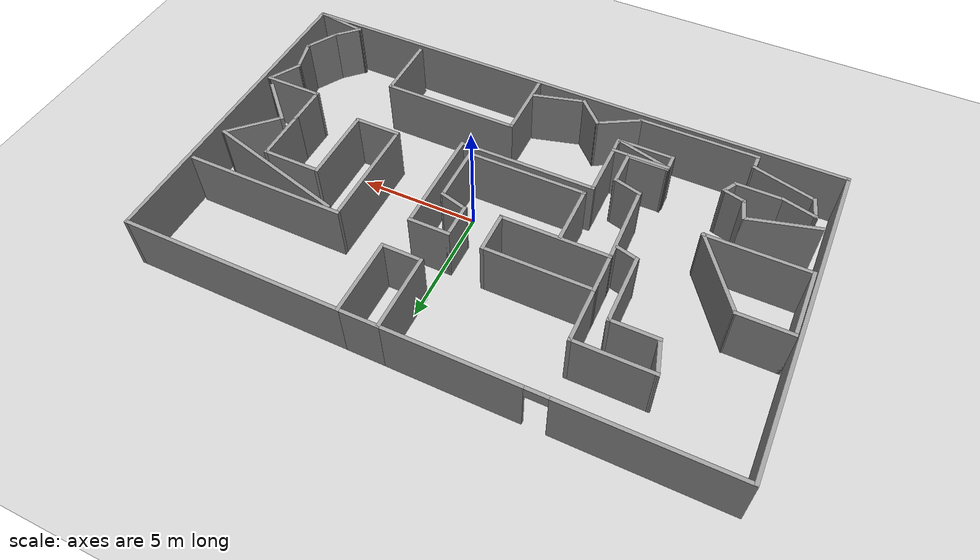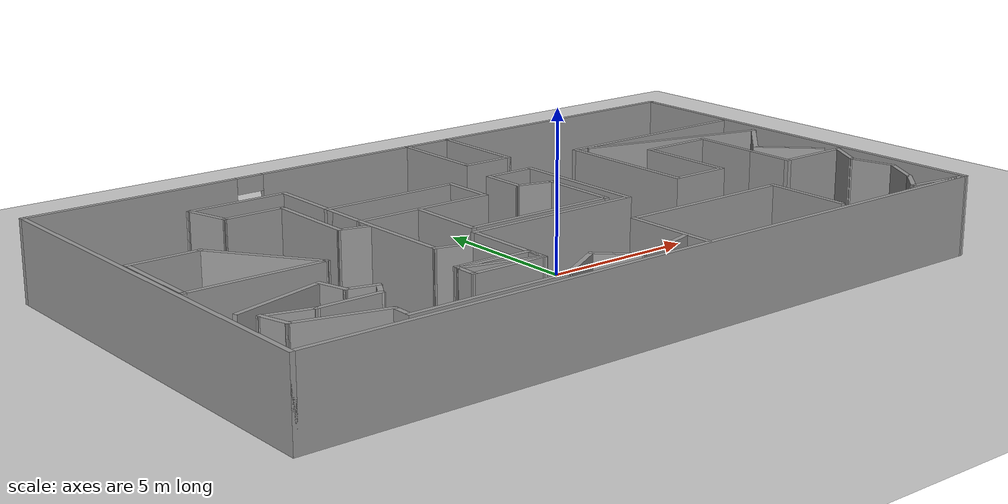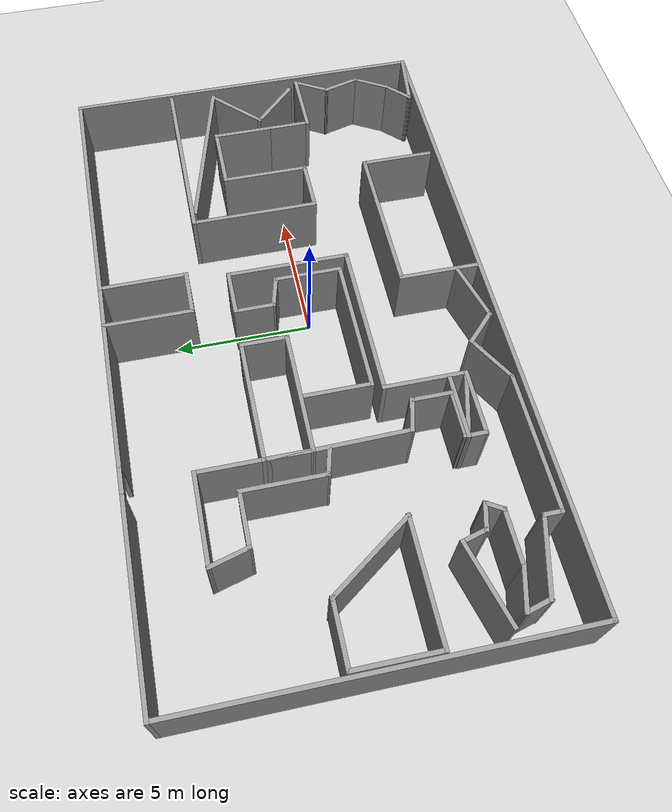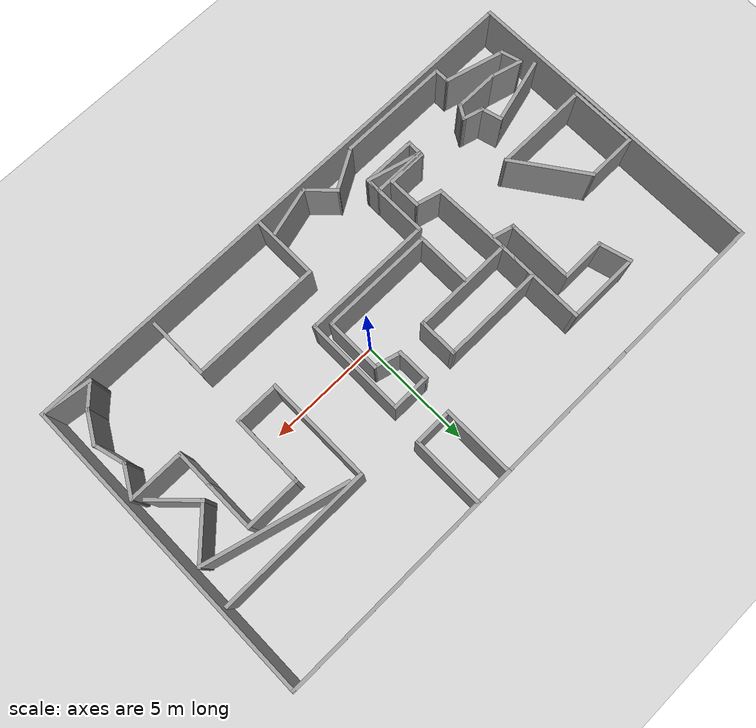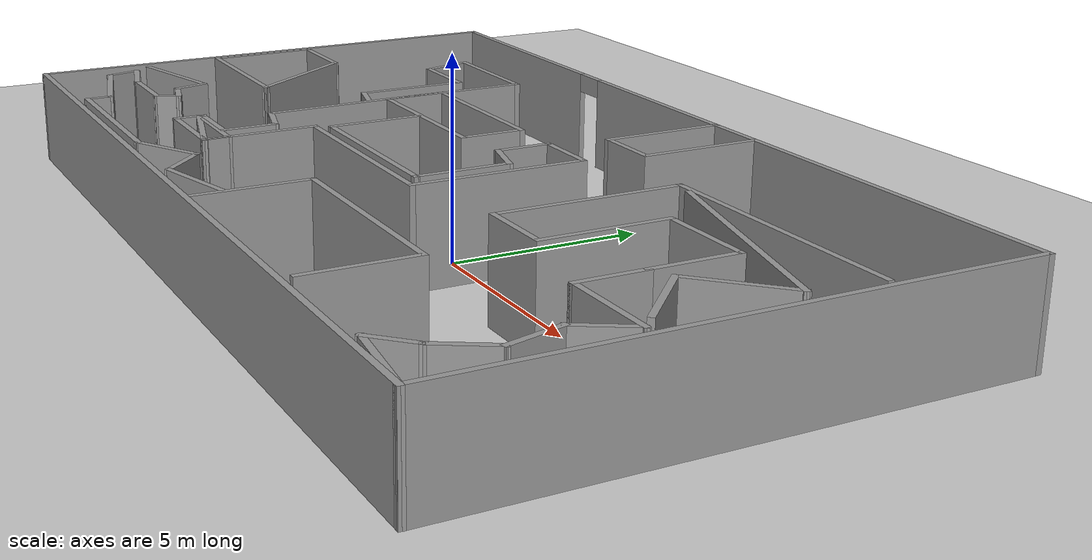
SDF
<sdf version="1.6">
 <world name="default">
  <light name="sun" type="directional">
   <pose>0 0 10 0 -0 0</pose>
   <diffuse>0.8 0.8 0.8 1</diffuse>
   <specular>0.2 0.2 0.2 1</specular>
   <attenuation>
    <range>1000</range>
    <constant>0.9</constant>
    <linear>0.01</linear>
    <quadratic>0.001</quadratic>
   </attenuation>
   <direction>-0.5 0.1 -0.9</direction>
  </light>
  <model name="ground_plane">
   <static>1</static>
   <link name="link">
    <collision name="collision">
     <geometry><plane><normal>0 0 1</normal><size>100 100</size></plane></geometry>
     <surface>
      <contact><collide_bitmask>65535</collide_bitmask></contact>
      <friction><ode><mu>100</mu><mu2>50</mu2></ode></friction>
     </surface>
    </collision>
    <visual name="visual">
     <cast_shadows>0</cast_shadows>
     <geometry><plane><normal>0 0 1</normal><size>100 100</size></plane></geometry>
     <material>
      <script><uri>file://media/materials/scripts/gazebo.material</uri><name>Gazebo/Grey</name></script>
     </material>
    </visual>
   </link>
  </model>
  <gravity>0 0 -9.8</gravity>
  <magnetic_field>6e-06 2.3e-05 -4.2e-05</magnetic_field>
  <atmosphere type="adiabatic"/>
  <physics name="default_physics" default="0" type="ode">
   <max_step_size>0.001</max_step_size>
   <real_time_factor>1</real_time_factor>
   <real_time_update_rate>1000</real_time_update_rate>
  </physics>
  <scene><ambient>0.4 0.4 0.4 1</ambient><background>0.7 0.7 0.7 1</background><shadows>1</shadows></scene>
  <audio><device>default</device></audio>
  <spherical_coordinates>
   <surface_model>EARTH_WGS84</surface_model>
   <latitude_deg>0</latitude_deg>
   <longitude_deg>0</longitude_deg>
   <elevation>0</elevation>
   <heading_deg>0</heading_deg>
  </spherical_coordinates>
  <model name="map1">
   <pose>-1.19039 0.507382 0 0 -0 0</pose>
   <link name="Wall_0">
    <collision name="Wall_0_Collision">
     <geometry><box><size>4.5 0.15 2.5</size></box></geometry>
     <pose>0 0 1.25 0 -0 0</pose>
    </collision>
    <visual name="Wall_0_Visual">
     <pose>0 0 1.25 0 -0 0</pose>
     <geometry><box><size>4.5 0.15 2.5</size></box></geometry>
     <material>
      <script><uri>file://media/materials/scripts/gazebo.material</uri><name>Gazebo/Grey</name></script>
      <ambient>1 1 1 1</ambient>
     </material>
     <meta><layer>0</layer></meta>
    </visual>
    <pose>-2.7462 2.25298 0 0 -0 3.14159</pose>
   </link>
   <link name="Wall_1">
    <collision name="Wall_1_Collision">
     <geometry><box><size>1.75 0.15 2.5</size></box></geometry>
     <pose>0 0 1.25 0 -0 0</pose>
    </collision>
    <visual name="Wall_1_Visual">
     <pose>0 0 1.25 0 -0 0</pose>
     <geometry><box><size>1.75 0.15 2.5</size></box></geometry>
     <material>
      <script><uri>file://media/materials/scripts/gazebo.material</uri><name>Gazebo/Grey</name></script>
      <ambient>1 1 1 1</ambient>
     </material>
     <meta><layer>0</layer></meta>
    </visual>
    <pose>-4.9212 1.45298 0 0 -0 -1.5708</pose>
   </link>
   <link name="Wall_10">
    <collision name="Wall_10_Collision">
     <geometry><box><size>13.75 0.15 2.5</size></box></geometry>
     <pose>0 0 1.25 0 -0 0</pose>
    </collision>
    <visual name="Wall_10_Visual">
     <pose>0 0 1.25 0 -0 0</pose>
     <geometry><box><size>13.75 0.15 2.5</size></box></geometry>
     <material>
      <script><uri>file://media/materials/scripts/gazebo.material</uri><name>Gazebo/Grey</name></script>
      <ambient>1 1 1 1</ambient>
     </material>
     <meta><layer>0</layer></meta>
    </visual>
    <pose>-11.9294 0.00439 0 0 -0 -1.5708</pose>
   </link>
   <link name="Wall_11">
    <collision name="Wall_11_Collision">
     <geometry><box><size>24 0.15 2.5</size></box></geometry>
     <pose>0 0 1.25 0 -0 0</pose>
    </collision>
    <visual name="Wall_11_Visual">
     <pose>0 0 1.25 0 -0 0</pose>
     <geometry><box><size>24 0.15 2.5</size></box></geometry>
     <material>
      <script><uri>file://media/materials/scripts/gazebo.material</uri><name>Gazebo/Grey</name></script>
      <ambient>1 1 1 1</ambient>
     </material>
     <meta><layer>0</layer></meta>
    </visual>
    <pose>-0.00439 -6.79561 0 0 -0 0</pose>
   </link>
   <link name="Wall_12">
    <collision name="Wall_12_Collision">
     <geometry><box><size>13.75 0.15 2.5</size></box></geometry>
     <pose>0 0 1.25 0 -0 0</pose>
    </collision>
    <visual name="Wall_12_Visual">
     <pose>0 0 1.25 0 -0 0</pose>
     <geometry><box><size>13.75 0.15 2.5</size></box></geometry>
     <material>
      <script><uri>file://media/materials/scripts/gazebo.material</uri><name>Gazebo/Grey</name></script>
      <ambient>1 1 1 1</ambient>
     </material>
     <meta><layer>0</layer></meta>
    </visual>
    <pose>11.9206 0.00439 0 0 -0 1.5708</pose>
   </link>
   <link name="Wall_13">
    <collision name="Wall_13_Collision">
     <geometry><box><size>9.3 0.15 2.5</size></box></geometry>
     <pose>0 0 1.25 0 -0 0</pose>
    </collision>
    <visual name="Wall_13_Visual">
     <pose>0 0 1.25 0 -0 0</pose>
     <geometry><box><size>9.3 0.15 2.5</size></box></geometry>
     <material>
      <script><uri>file://media/materials/scripts/gazebo.material</uri><name>Gazebo/Grey</name></script>
      <ambient>1 1 1 1</ambient>
     </material>
     <meta><layer>0</layer></meta>
    </visual>
    <pose>7.34561 6.80439 0 0 -0 3.14159</pose>
   </link>
   <link name="Wall_15">
    <collision name="Wall_15_Collision">
     <geometry><box><size>2.25 0.15 2.5</size></box></geometry>
     <pose>0 0 1.25 0 -0 0</pose>
    </collision>
    <visual name="Wall_15_Visual">
     <pose>0 0 1.25 0 -0 0</pose>
     <geometry><box><size>2.25 0.15 2.5</size></box></geometry>
     <material>
      <script><uri>file://media/materials/scripts/gazebo.material</uri><name>Gazebo/Grey</name></script>
      <ambient>1 1 1 1</ambient>
     </material>
     <meta><layer>0</layer></meta>
    </visual>
    <pose>-10.7023 1.08004 0 0 -0 3.14159</pose>
   </link>
   <link name="Wall_16">
    <collision name="Wall_16_Collision">
     <geometry><box><size>3 0.15 2.5</size></box></geometry>
     <pose>0 0 1.25 0 -0 0</pose>
    </collision>
    <visual name="Wall_16_Visual">
     <pose>0 0 1.25 0 -0 0</pose>
     <geometry><box><size>3 0.15 2.5</size></box></geometry>
     <material>
      <script><uri>file://media/materials/scripts/gazebo.material</uri><name>Gazebo/Grey</name></script>
      <ambient>1 1 1 1</ambient>
     </material>
     <meta><layer>0</layer></meta>
    </visual>
    <pose>-11.7523 -0.344958 0 0 -0 -1.5708</pose>
   </link>
   <link name="Wall_17">
    <collision name="Wall_17_Collision">
     <geometry><box><size>4.25 0.15 2.5</size></box></geometry>
     <pose>0 0 1.25 0 -0 0</pose>
    </collision>
    <visual name="Wall_17_Visual">
     <pose>0 0 1.25 0 -0 0</pose>
     <geometry><box><size>4.25 0.15 2.5</size></box></geometry>
     <material>
      <script><uri>file://media/materials/scripts/gazebo.material</uri><name>Gazebo/Grey</name></script>
      <ambient>1 1 1 1</ambient>
     </material>
     <meta><layer>0</layer></meta>
    </visual>
    <pose>-9.70234 -1.76996 0 0 -0 0</pose>
   </link>
   <link name="Wall_18">
    <collision name="Wall_18_Collision">
     <geometry><box><size>3.63174 0.15 2.5</size></box></geometry>
     <pose>0 0 1.25 0 -0 0</pose>
    </collision>
    <visual name="Wall_18_Visual">
     <pose>0 0 1.25 0 -0 0</pose>
     <geometry><box><size>3.63174 0.15 2.5</size></box></geometry>
     <material>
      <script><uri>file://media/materials/scripts/gazebo.material</uri><name>Gazebo/Grey</name></script>
      <ambient>1 1 1 1</ambient>
     </material>
     <meta><layer>0</layer></meta>
    </visual>
    <pose>-8.65234 -0.344958 0 0 -0 2.1827</pose>
   </link>
   <link name="Wall_2">
    <collision name="Wall_2_Collision">
     <geometry><box><size>4.5 0.15 2.5</size></box></geometry>
     <pose>0 0 1.25 0 -0 0</pose>
    </collision>
    <visual name="Wall_2_Visual">
     <pose>0 0 1.25 0 -0 0</pose>
     <geometry><box><size>4.5 0.15 2.5</size></box></geometry>
     <material>
      <script><uri>file://media/materials/scripts/gazebo.material</uri><name>Gazebo/Grey</name></script>
      <ambient>1 1 1 1</ambient>
     </material>
     <meta><layer>0</layer></meta>
    </visual>
    <pose>-2.7462 0.652977 0 0 -0 0</pose>
   </link>
   <link name="Wall_20">
    <collision name="Wall_20_Collision">
     <geometry><box><size>3 0.15 2.5</size></box></geometry>
     <pose>0 0 1.25 0 -0 0</pose>
    </collision>
    <visual name="Wall_20_Visual">
     <pose>0 0 1.25 0 -0 0</pose>
     <geometry><box><size>3 0.15 2.5</size></box></geometry>
     <material>
      <script><uri>file://media/materials/scripts/gazebo.material</uri><name>Gazebo/Grey</name></script>
      <ambient>1 1 1 1</ambient>
     </material>
     <meta><layer>0</layer></meta>
    </visual>
    <pose>1.08494 -5.29338 0 0 -0 1.5708</pose>
   </link>
   <link name="Wall_21">
    <collision name="Wall_21_Collision">
     <geometry><box><size>5.75 0.15 2.5</size></box></geometry>
     <pose>0 0 1.25 0 -0 0</pose>
    </collision>
    <visual name="Wall_21_Visual">
     <pose>0 0 1.25 0 -0 0</pose>
     <geometry><box><size>5.75 0.15 2.5</size></box></geometry>
     <material>
      <script><uri>file://media/materials/scripts/gazebo.material</uri><name>Gazebo/Grey</name></script>
      <ambient>1 1 1 1</ambient>
     </material>
     <meta><layer>0</layer></meta>
    </visual>
    <pose>3.88494 -3.86837 0 0 -0 0</pose>
   </link>
   <link name="Wall_22">
    <collision name="Wall_22_Collision">
     <geometry><box><size>2.75 0.15 2.5</size></box></geometry>
     <pose>0 0 1.25 0 -0 0</pose>
    </collision>
    <visual name="Wall_22_Visual">
     <pose>0 0 1.25 0 -0 0</pose>
     <geometry><box><size>2.75 0.15 2.5</size></box></geometry>
     <material>
      <script><uri>file://media/materials/scripts/gazebo.material</uri><name>Gazebo/Grey</name></script>
      <ambient>1 1 1 1</ambient>
     </material>
     <meta><layer>0</layer></meta>
    </visual>
    <pose>6.68494 -5.16838 0 0 -0 -1.5708</pose>
   </link>
   <link name="Wall_24">
    <collision name="Wall_24_Collision">
     <geometry><box><size>6.75 0.15 2.5</size></box></geometry>
     <pose>0 0 1.25 0 -0 0</pose>
    </collision>
    <visual name="Wall_24_Visual">
     <pose>0 0 1.25 0 -0 0</pose>
     <geometry><box><size>6.75 0.15 2.5</size></box></geometry>
     <material>
      <script><uri>file://media/materials/scripts/gazebo.material</uri><name>Gazebo/Grey</name></script>
      <ambient>1 1 1 1</ambient>
     </material>
     <meta><layer>0</layer></meta>
    </visual>
    <pose>8.37132 3.08606 0 0 -0 3.14159</pose>
   </link>
   <link name="Wall_25">
    <collision name="Wall_25_Collision">
     <geometry><box><size>4.75 0.15 2.5</size></box></geometry>
     <pose>0 0 1.25 0 -0 0</pose>
    </collision>
    <visual name="Wall_25_Visual">
     <pose>0 0 1.25 0 -0 0</pose>
     <geometry><box><size>4.75 0.15 2.5</size></box></geometry>
     <material>
      <script><uri>file://media/materials/scripts/gazebo.material</uri><name>Gazebo/Grey</name></script>
      <ambient>1 1 1 1</ambient>
     </material>
     <meta><layer>0</layer></meta>
    </visual>
    <pose>5.07132 0.786063 0 0 -0 -1.5708</pose>
   </link>
   <link name="Wall_26">
    <collision name="Wall_26_Collision">
     <geometry><box><size>2 0.15 2.5</size></box></geometry>
     <pose>0 0 1.25 0 -0 0</pose>
    </collision>
    <visual name="Wall_26_Visual">
     <pose>0 0 1.25 0 -0 0</pose>
     <geometry><box><size>2 0.15 2.5</size></box></geometry>
     <material>
      <script><uri>file://media/materials/scripts/gazebo.material</uri><name>Gazebo/Grey</name></script>
      <ambient>1 1 1 1</ambient>
     </material>
     <meta><layer>0</layer></meta>
    </visual>
    <pose>5.99632 -1.51394 0 0 -0 0</pose>
   </link>
   <link name="Wall_27">
    <collision name="Wall_27_Collision">
     <geometry><box><size>3.25 0.15 2.5</size></box></geometry>
     <pose>0 0 1.25 0 -0 0</pose>
    </collision>
    <visual name="Wall_27_Visual">
     <pose>0 0 1.25 0 -0 0</pose>
     <geometry><box><size>3.25 0.15 2.5</size></box></geometry>
     <material>
      <script><uri>file://media/materials/scripts/gazebo.material</uri><name>Gazebo/Grey</name></script>
      <ambient>1 1 1 1</ambient>
     </material>
     <meta><layer>0</layer></meta>
    </visual>
    <pose>6.92132 0.036063 0 0 -0 1.5708</pose>
   </link>
   <link name="Wall_28">
    <collision name="Wall_28_Collision">
     <geometry><box><size>2.5 0.15 2.5</size></box></geometry>
     <pose>0 0 1.25 0 -0 0</pose>
    </collision>
    <visual name="Wall_28_Visual">
     <pose>0 0 1.25 0 -0 0</pose>
     <geometry><box><size>2.5 0.15 2.5</size></box></geometry>
     <material>
      <script><uri>file://media/materials/scripts/gazebo.material</uri><name>Gazebo/Grey</name></script>
      <ambient>1 1 1 1</ambient>
     </material>
     <meta><layer>0</layer></meta>
    </visual>
    <pose>8.09632 1.58606 0 0 -0 0</pose>
   </link>
   <link name="Wall_29">
    <collision name="Wall_29_Collision">
     <geometry><box><size>2.25 0.15 2.5</size></box></geometry>
     <pose>0 0 1.25 0 -0 0</pose>
    </collision>
    <visual name="Wall_29_Visual">
     <pose>0 0 1.25 0 -0 0</pose>
     <geometry><box><size>2.25 0.15 2.5</size></box></geometry>
     <material>
      <script><uri>file://media/materials/scripts/gazebo.material</uri><name>Gazebo/Grey</name></script>
      <ambient>1 1 1 1</ambient>
     </material>
     <meta><layer>0</layer></meta>
    </visual>
    <pose>9.27132 0.536063 0 0 -0 -1.5708</pose>
   </link>
   <link name="Wall_3">
    <collision name="Wall_3_Collision">
     <geometry><box><size>1.75 0.15 2.5</size></box></geometry>
     <pose>0 0 1.25 0 -0 0</pose>
    </collision>
    <visual name="Wall_3_Visual">
     <pose>0 0 1.25 0 -0 0</pose>
     <geometry><box><size>1.75 0.15 2.5</size></box></geometry>
     <material>
      <script><uri>file://media/materials/scripts/gazebo.material</uri><name>Gazebo/Grey</name></script>
      <ambient>1 1 1 1</ambient>
     </material>
     <meta><layer>0</layer></meta>
    </visual>
    <pose>-0.571199 1.45298 0 0 -0 1.5708</pose>
   </link>
   <link name="Wall_30">
    <collision name="Wall_30_Collision">
     <geometry><box><size>1.75 0.15 2.5</size></box></geometry>
     <pose>0 0 1.25 0 -0 0</pose>
    </collision>
    <visual name="Wall_30_Visual">
     <pose>0 0 1.25 0 -0 0</pose>
     <geometry><box><size>1.75 0.15 2.5</size></box></geometry>
     <material>
      <script><uri>file://media/materials/scripts/gazebo.material</uri><name>Gazebo/Grey</name></script>
      <ambient>1 1 1 1</ambient>
     </material>
     <meta><layer>0</layer></meta>
    </visual>
    <pose>9.27132 -1.31394 0 0 -0 -1.5708</pose>
   </link>
   <link name="Wall_31">
    <collision name="Wall_31_Collision">
     <geometry><box><size>2.5 0.15 2.5</size></box></geometry>
     <pose>0 0 1.25 0 -0 0</pose>
    </collision>
    <visual name="Wall_31_Visual">
     <pose>0 0 1.25 0 -0 0</pose>
     <geometry><box><size>2.5 0.15 2.5</size></box></geometry>
     <material>
      <script><uri>file://media/materials/scripts/gazebo.material</uri><name>Gazebo/Grey</name></script>
      <ambient>1 1 1 1</ambient>
     </material>
     <meta><layer>0</layer></meta>
    </visual>
    <pose>10.4463 -2.11394 0 0 -0 0</pose>
   </link>
   <link name="Wall_32">
    <collision name="Wall_32_Collision">
     <geometry><box><size>1.5 0.15 2.5</size></box></geometry>
     <pose>0 0 1.25 0 -0 0</pose>
    </collision>
    <visual name="Wall_32_Visual">
     <pose>0 0 1.25 0 -0 0</pose>
     <geometry><box><size>1.5 0.15 2.5</size></box></geometry>
     <material>
      <script><uri>file://media/materials/scripts/gazebo.material</uri><name>Gazebo/Grey</name></script>
      <ambient>1 1 1 1</ambient>
     </material>
     <meta><layer>0</layer></meta>
    </visual>
    <pose>11.2838 -2.6985 0 0 -0 -2.0944</pose>
   </link>
   <link name="Wall_33">
    <collision name="Wall_33_Collision">
     <geometry><box><size>1.5 0.15 2.5</size></box></geometry>
     <pose>0 0 1.25 0 -0 0</pose>
    </collision>
    <visual name="Wall_33_Visual">
     <pose>0 0 1.25 0 -0 0</pose>
     <geometry><box><size>1.5 0.15 2.5</size></box></geometry>
     <material>
      <script><uri>file://media/materials/scripts/gazebo.material</uri><name>Gazebo/Grey</name></script>
      <ambient>1 1 1 1</ambient>
     </material>
     <meta><layer>0</layer></meta>
    </visual>
    <pose>11.121 -3.93507 0 0 -0 -1.309</pose>
   </link>
   <link name="Wall_34">
    <collision name="Wall_34_Collision">
     <geometry><box><size>1.5 0.15 2.5</size></box></geometry>
     <pose>0 0 1.25 0 -0 0</pose>
    </collision>
    <visual name="Wall_34_Visual">
     <pose>0 0 1.25 0 -0 0</pose>
     <geometry><box><size>1.5 0.15 2.5</size></box></geometry>
     <material>
      <script><uri>file://media/materials/scripts/gazebo.material</uri><name>Gazebo/Grey</name></script>
      <ambient>1 1 1 1</ambient>
     </material>
     <meta><layer>0</layer></meta>
    </visual>
    <pose>10.9582 -5.17164 0 0 -0 -2.0944</pose>
   </link>
   <link name="Wall_35">
    <collision name="Wall_35_Collision">
     <geometry><box><size>1.25 0.15 2.5</size></box></geometry>
     <pose>0 0 1.25 0 -0 0</pose>
    </collision>
    <visual name="Wall_35_Visual">
     <pose>0 0 1.25 0 -0 0</pose>
     <geometry><box><size>1.25 0.15 2.5</size></box></geometry>
     <material>
      <script><uri>file://media/materials/scripts/gazebo.material</uri><name>Gazebo/Grey</name></script>
      <ambient>1 1 1 1</ambient>
     </material>
     <meta><layer>0</layer></meta>
    </visual>
    <pose>10.2318 -6.14511 0 0 -0 -2.35619</pose>
   </link>
   <link name="Wall_36">
    <collision name="Wall_36_Collision">
     <geometry><box><size>2.2441 0.15 2.5</size></box></geometry>
     <pose>0 0 1.25 0 -0 0</pose>
    </collision>
    <visual name="Wall_36_Visual">
     <pose>0 0 1.25 0 -0 0</pose>
     <geometry><box><size>2.2441 0.15 2.5</size></box></geometry>
     <material>
      <script><uri>file://media/materials/scripts/gazebo.material</uri><name>Gazebo/Grey</name></script>
      <ambient>1 1 1 1</ambient>
     </material>
     <meta><layer>0</layer></meta>
    </visual>
    <pose>10.8818 -6.66482 0 0 -0 -0.125243</pose>
   </link>
   <link name="Wall_38">
    <collision name="Wall_38_Collision">
     <geometry><box><size>2.5 0.15 2.5</size></box></geometry>
     <pose>0 0 1.25 0 -0 0</pose>
    </collision>
    <visual name="Wall_38_Visual">
     <pose>0 0 1.25 0 -0 0</pose>
     <geometry><box><size>2.5 0.15 2.5</size></box></geometry>
     <material>
      <script><uri>file://media/materials/scripts/gazebo.material</uri><name>Gazebo/Grey</name></script>
      <ambient>1 1 1 1</ambient>
     </material>
     <meta><layer>0</layer></meta>
    </visual>
    <pose>-2.93861 -0.603134 0 0 -0 -1.5708</pose>
   </link>
   <link name="Wall_39">
    <collision name="Wall_39_Collision">
     <geometry><box><size>5 0.15 2.5</size></box></geometry>
     <pose>0 0 1.25 0 -0 0</pose>
    </collision>
    <visual name="Wall_39_Visual">
     <pose>0 0 1.25 0 -0 0</pose>
     <geometry><box><size>5 0.15 2.5</size></box></geometry>
     <material>
      <script><uri>file://media/materials/scripts/gazebo.material</uri><name>Gazebo/Grey</name></script>
      <ambient>1 1 1 1</ambient>
     </material>
     <meta><layer>0</layer></meta>
    </visual>
    <pose>-0.513606 -1.77813 0 0 -0 0</pose>
   </link>
   <link name="Wall_40">
    <collision name="Wall_40_Collision">
     <geometry><box><size>2.5 0.15 2.5</size></box></geometry>
     <pose>0 0 1.25 0 -0 0</pose>
    </collision>
    <visual name="Wall_40_Visual">
     <pose>0 0 1.25 0 -0 0</pose>
     <geometry><box><size>2.5 0.15 2.5</size></box></geometry>
     <material>
      <script><uri>file://media/materials/scripts/gazebo.material</uri><name>Gazebo/Grey</name></script>
      <ambient>1 1 1 1</ambient>
     </material>
     <meta><layer>0</layer></meta>
    </visual>
    <pose>1.91139 -0.603134 0 0 -0 1.5708</pose>
   </link>
   <link name="Wall_41">
    <collision name="Wall_41_Collision">
     <geometry><box><size>1.25 0.15 2.5</size></box></geometry>
     <pose>0 0 1.25 0 -0 0</pose>
    </collision>
    <visual name="Wall_41_Visual">
     <pose>0 0 1.25 0 -0 0</pose>
     <geometry><box><size>1.25 0.15 2.5</size></box></geometry>
     <material>
      <script><uri>file://media/materials/scripts/gazebo.material</uri><name>Gazebo/Grey</name></script>
      <ambient>1 1 1 1</ambient>
     </material>
     <meta><layer>0</layer></meta>
    </visual>
    <pose>1.38013 0.714217 0 0 -0 2.87979</pose>
   </link>
   <link name="Wall_42">
    <collision name="Wall_42_Collision">
     <geometry><box><size>1.5 0.15 2.5</size></box></geometry>
     <pose>0 0 1.25 0 -0 0</pose>
    </collision>
    <visual name="Wall_42_Visual">
     <pose>0 0 1.25 0 -0 0</pose>
     <geometry><box><size>1.5 0.15 2.5</size></box></geometry>
     <material>
      <script><uri>file://media/materials/scripts/gazebo.material</uri><name>Gazebo/Grey</name></script>
      <ambient>1 1 1 1</ambient>
     </material>
     <meta><layer>0</layer></meta>
    </visual>
    <pose>0.848876 1.53157 0 0 -0 1.5708</pose>
   </link>
   <link name="Wall_43">
    <collision name="Wall_43_Collision">
     <geometry><box><size>1.75 0.15 2.5</size></box></geometry>
     <pose>0 0 1.25 0 -0 0</pose>
    </collision>
    <visual name="Wall_43_Visual">
     <pose>0 0 1.25 0 -0 0</pose>
     <geometry><box><size>1.75 0.15 2.5</size></box></geometry>
     <material>
      <script><uri>file://media/materials/scripts/gazebo.material</uri><name>Gazebo/Grey</name></script>
      <ambient>1 1 1 1</ambient>
     </material>
     <meta><layer>0</layer></meta>
    </visual>
    <pose>1.64888 2.20657 0 0 -0 0</pose>
   </link>
   <link name="Wall_44">
    <collision name="Wall_44_Collision">
     <geometry><box><size>4.5 0.15 2.5</size></box></geometry>
     <pose>0 0 1.25 0 -0 0</pose>
    </collision>
    <visual name="Wall_44_Visual">
     <pose>0 0 1.25 0 -0 0</pose>
     <geometry><box><size>4.5 0.15 2.5</size></box></geometry>
     <material>
      <script><uri>file://media/materials/scripts/gazebo.material</uri><name>Gazebo/Grey</name></script>
      <ambient>1 1 1 1</ambient>
     </material>
     <meta><layer>0</layer></meta>
    </visual>
    <pose>2.44888 0.031568 0 0 -0 -1.5708</pose>
   </link>
   <link name="Wall_45">
    <collision name="Wall_45_Collision">
     <geometry><box><size>5.75 0.15 2.5</size></box></geometry>
     <pose>0 0 1.25 0 -0 0</pose>
    </collision>
    <visual name="Wall_45_Visual">
     <pose>0 0 1.25 0 -0 0</pose>
     <geometry><box><size>5.75 0.15 2.5</size></box></geometry>
     <material>
      <script><uri>file://media/materials/scripts/gazebo.material</uri><name>Gazebo/Grey</name></script>
      <ambient>1 1 1 1</ambient>
     </material>
     <meta><layer>0</layer></meta>
    </visual>
    <pose>-0.351125 -2.14343 0 0 -0 3.14159</pose>
   </link>
   <link name="Wall_46">
    <collision name="Wall_46_Collision">
     <geometry><box><size>3 0.15 2.5</size></box></geometry>
     <pose>0 0 1.25 0 -0 0</pose>
    </collision>
    <visual name="Wall_46_Visual">
     <pose>0 0 1.25 0 -0 0</pose>
     <geometry><box><size>3 0.15 2.5</size></box></geometry>
     <material>
      <script><uri>file://media/materials/scripts/gazebo.material</uri><name>Gazebo/Grey</name></script>
      <ambient>1 1 1 1</ambient>
     </material>
     <meta><layer>0</layer></meta>
    </visual>
    <pose>-3.15112 -3.56843 0 0 -0 -1.5708</pose>
   </link>
   <link name="Wall_47">
    <collision name="Wall_47_Collision">
     <geometry><box><size>2.5 0.15 2.5</size></box></geometry>
     <pose>0 0 1.25 0 -0 0</pose>
    </collision>
    <visual name="Wall_47_Visual">
     <pose>0 0 1.25 0 -0 0</pose>
     <geometry><box><size>2.5 0.15 2.5</size></box></geometry>
     <material>
      <script><uri>file://media/materials/scripts/gazebo.material</uri><name>Gazebo/Grey</name></script>
      <ambient>1 1 1 1</ambient>
     </material>
     <meta><layer>0</layer></meta>
    </visual>
    <pose>-4.28609 -4.68932 0 0 -0 2.87979</pose>
   </link>
   <link name="Wall_48">
    <collision name="Wall_48_Collision">
     <geometry><box><size>0.75 0.15 2.5</size></box></geometry>
     <pose>0 0 1.25 0 -0 0</pose>
    </collision>
    <visual name="Wall_48_Visual">
     <pose>0 0 1.25 0 -0 0</pose>
     <geometry><box><size>0.75 0.15 2.5</size></box></geometry>
     <material>
      <script><uri>file://media/materials/scripts/gazebo.material</uri><name>Gazebo/Grey</name></script>
      <ambient>1 1 1 1</ambient>
     </material>
     <meta><layer>0</layer></meta>
    </visual>
    <pose>-5.42105 -4.68521 0 0 -0 -1.5708</pose>
   </link>
   <link name="Wall_49">
    <collision name="Wall_49_Collision">
     <geometry><box><size>2.41994 0.15 2.5</size></box></geometry>
     <pose>0 0 1.25 0 -0 0</pose>
    </collision>
    <visual name="Wall_49_Visual">
     <pose>0 0 1.25 0 -0 0</pose>
     <geometry><box><size>2.41994 0.15 2.5</size></box></geometry>
     <material>
      <script><uri>file://media/materials/scripts/gazebo.material</uri><name>Gazebo/Grey</name></script>
      <ambient>1 1 1 1</ambient>
     </material>
     <meta><layer>0</layer></meta>
    </visual>
    <pose>-4.28609 -4.98932 0 0 -0 -0.003623</pose>
   </link>
   <link name="Wall_5">
    <collision name="Wall_5_Collision">
     <geometry><box><size>3.25 0.15 2.5</size></box></geometry>
     <pose>0 0 1.25 0 -0 0</pose>
    </collision>
    <visual name="Wall_5_Visual">
     <pose>0 0 1.25 0 -0 0</pose>
     <geometry><box><size>3.25 0.15 2.5</size></box></geometry>
     <material>
      <script><uri>file://media/materials/scripts/gazebo.material</uri><name>Gazebo/Grey</name></script>
      <ambient>1 1 1 1</ambient>
     </material>
     <meta><layer>0</layer></meta>
    </visual>
    <pose>1.17061 5.25439 0 0 -0 -1.5708</pose>
   </link>
   <link name="Wall_50">
    <collision name="Wall_50_Collision">
     <geometry><box><size>0.75 0.15 2.5</size></box></geometry>
     <pose>0 0 1.25 0 -0 0</pose>
    </collision>
    <visual name="Wall_50_Visual">
     <pose>0 0 1.25 0 -0 0</pose>
     <geometry><box><size>0.75 0.15 2.5</size></box></geometry>
     <material>
      <script><uri>file://media/materials/scripts/gazebo.material</uri><name>Gazebo/Grey</name></script>
      <ambient>1 1 1 1</ambient>
     </material>
     <meta><layer>0</layer></meta>
    </visual>
    <pose>-3.15112 -4.69343 0 0 -0 1.5708</pose>
   </link>
   <link name="Wall_51">
    <collision name="Wall_51_Collision">
     <geometry><box><size>2.41994 0.15 2.5</size></box></geometry>
     <pose>0 0 1.25 0 -0 0</pose>
    </collision>
    <visual name="Wall_51_Visual">
     <pose>0 0 1.25 0 -0 0</pose>
     <geometry><box><size>2.41994 0.15 2.5</size></box></geometry>
     <material>
      <script><uri>file://media/materials/scripts/gazebo.material</uri><name>Gazebo/Grey</name></script>
      <ambient>1 1 1 1</ambient>
     </material>
     <meta><layer>0</layer></meta>
    </visual>
    <pose>-4.28609 -4.38932 0 0 -0 3.13797</pose>
   </link>
   <link name="Wall_52">
    <collision name="Wall_52_Collision">
     <geometry><box><size>0.25 0.15 2.5</size></box></geometry>
     <pose>0 0 1.25 0 -0 0</pose>
    </collision>
    <visual name="Wall_52_Visual">
     <pose>0 0 1.25 0 -0 0</pose>
     <geometry><box><size>0.25 0.15 2.5</size></box></geometry>
     <material>
      <script><uri>file://media/materials/scripts/gazebo.material</uri><name>Gazebo/Grey</name></script>
      <ambient>1 1 1 1</ambient>
     </material>
     <meta><layer>0</layer></meta>
    </visual>
    <pose>-5.40811 -4.33691 0 0 -0 1.309</pose>
   </link>
   <link name="Wall_53">
    <collision name="Wall_53_Collision">
     <geometry><box><size>1.75 0.15 2.5</size></box></geometry>
     <pose>0 0 1.25 0 -0 0</pose>
    </collision>
    <visual name="Wall_53_Visual">
     <pose>0 0 1.25 0 -0 0</pose>
     <geometry><box><size>1.75 0.15 2.5</size></box></geometry>
     <material>
      <script><uri>file://media/materials/scripts/gazebo.material</uri><name>Gazebo/Grey</name></script>
      <ambient>1 1 1 1</ambient>
     </material>
     <meta><layer>0</layer></meta>
    </visual>
    <pose>-4.59517 -4.28862 0 0 -0 0</pose>
   </link>
   <link name="Wall_54">
    <collision name="Wall_54_Collision">
     <geometry><box><size>1.5 0.15 2.5</size></box></geometry>
     <pose>0 0 1.25 0 -0 0</pose>
    </collision>
    <visual name="Wall_54_Visual">
     <pose>0 0 1.25 0 -0 0</pose>
     <geometry><box><size>1.5 0.15 2.5</size></box></geometry>
     <material>
      <script><uri>file://media/materials/scripts/gazebo.material</uri><name>Gazebo/Grey</name></script>
      <ambient>1 1 1 1</ambient>
     </material>
     <meta><layer>0</layer></meta>
    </visual>
    <pose>-3.79517 -3.61361 0 0 -0 1.5708</pose>
   </link>
   <link name="Wall_55">
    <collision name="Wall_55_Collision">
     <geometry><box><size>1.25 0.15 2.5</size></box></geometry>
     <pose>0 0 1.25 0 -0 0</pose>
    </collision>
    <visual name="Wall_55_Visual">
     <pose>0 0 1.25 0 -0 0</pose>
     <geometry><box><size>1.25 0.15 2.5</size></box></geometry>
     <material>
      <script><uri>file://media/materials/scripts/gazebo.material</uri><name>Gazebo/Grey</name></script>
      <ambient>1 1 1 1</ambient>
     </material>
     <meta><layer>0</layer></meta>
    </visual>
    <pose>-4.32643 -2.79627 0 0 -0 2.87979</pose>
   </link>
   <link name="Wall_56">
    <collision name="Wall_56_Collision">
     <geometry><box><size>3.4575 0.15 2.5</size></box></geometry>
     <pose>0 0 1.25 0 -0 0</pose>
    </collision>
    <visual name="Wall_56_Visual">
     <pose>0 0 1.25 0 -0 0</pose>
     <geometry><box><size>3.4575 0.15 2.5</size></box></geometry>
     <material>
      <script><uri>file://media/materials/scripts/gazebo.material</uri><name>Gazebo/Grey</name></script>
      <ambient>1 1 1 1</ambient>
     </material>
     <meta><layer>0</layer></meta>
    </visual>
    <pose>-4.88944 -1.00047 0 0 -0 1.59</pose>
   </link>
   <link name="Wall_57">
    <collision name="Wall_57_Collision">
     <geometry><box><size>4 0.15 2.5</size></box></geometry>
     <pose>0 0 1.25 0 -0 0</pose>
    </collision>
    <visual name="Wall_57_Visual">
     <pose>0 0 1.25 0 -0 0</pose>
     <geometry><box><size>4 0.15 2.5</size></box></geometry>
     <material>
      <script><uri>file://media/materials/scripts/gazebo.material</uri><name>Gazebo/Grey</name></script>
      <ambient>1 1 1 1</ambient>
     </material>
     <meta><layer>0</layer></meta>
    </visual>
    <pose>-4.9212 2.57798 0 0 -0 1.5708</pose>
   </link>
   <link name="Wall_58">
    <collision name="Wall_58_Collision">
     <geometry><box><size>3.25 0.15 2.5</size></box></geometry>
     <pose>0 0 1.25 0 -0 0</pose>
    </collision>
    <visual name="Wall_58_Visual">
     <pose>0 0 1.25 0 -0 0</pose>
     <geometry><box><size>3.25 0.15 2.5</size></box></geometry>
     <material>
      <script><uri>file://media/materials/scripts/gazebo.material</uri><name>Gazebo/Grey</name></script>
      <ambient>1 1 1 1</ambient>
     </material>
     <meta><layer>0</layer></meta>
    </visual>
    <pose>-6.4712 4.50298 0 0 -0 3.14159</pose>
   </link>
   <link name="Wall_59">
    <collision name="Wall_59_Collision">
     <geometry><box><size>1.5 0.15 2.5</size></box></geometry>
     <pose>0 0 1.25 0 -0 0</pose>
    </collision>
    <visual name="Wall_59_Visual">
     <pose>0 0 1.25 0 -0 0</pose>
     <geometry><box><size>1.5 0.15 2.5</size></box></geometry>
     <material>
      <script><uri>file://media/materials/scripts/gazebo.material</uri><name>Gazebo/Grey</name></script>
      <ambient>1 1 1 1</ambient>
     </material>
     <meta><layer>0</layer></meta>
    </visual>
    <pose>-7.8465 3.85098 0 0 -0 -1.309</pose>
   </link>
   <link name="Wall_6">
    <collision name="Wall_6_Collision">
     <geometry><box><size>1.75 0.15 2.5</size></box></geometry>
     <pose>0 0 1.25 0 -0 0</pose>
    </collision>
    <visual name="Wall_6_Visual">
     <pose>0 0 1.25 0 -0 0</pose>
     <geometry><box><size>1.75 0.15 2.5</size></box></geometry>
     <material>
      <script><uri>file://media/materials/scripts/gazebo.material</uri><name>Gazebo/Grey</name></script>
      <ambient>1 1 1 1</ambient>
     </material>
     <meta><layer>0</layer></meta>
    </visual>
    <pose>1.97061 3.70439 0 0 -0 0</pose>
   </link>
   <link name="Wall_60">
    <collision name="Wall_60_Collision">
     <geometry><box><size>2 0.15 2.5</size></box></geometry>
     <pose>0 0 1.25 0 -0 0</pose>
    </collision>
    <visual name="Wall_60_Visual">
     <pose>0 0 1.25 0 -0 0</pose>
     <geometry><box><size>2 0.15 2.5</size></box></geometry>
     <material>
      <script><uri>file://media/materials/scripts/gazebo.material</uri><name>Gazebo/Grey</name></script>
      <ambient>1 1 1 1</ambient>
     </material>
     <meta><layer>0</layer></meta>
    </visual>
    <pose>-6.74679 3.19898 0 0 -0 0</pose>
   </link>
   <link name="Wall_61">
    <collision name="Wall_61_Collision">
     <geometry><box><size>3 0.15 2.5</size></box></geometry>
     <pose>0 0 1.25 0 -0 0</pose>
    </collision>
    <visual name="Wall_61_Visual">
     <pose>0 0 1.25 0 -0 0</pose>
     <geometry><box><size>3 0.15 2.5</size></box></geometry>
     <material>
      <script><uri>file://media/materials/scripts/gazebo.material</uri><name>Gazebo/Grey</name></script>
      <ambient>1 1 1 1</ambient>
     </material>
     <meta><layer>0</layer></meta>
    </visual>
    <pose>-5.82179 1.77398 0 0 -0 -1.5708</pose>
   </link>
   <link name="Wall_62">
    <collision name="Wall_62_Collision">
     <geometry><box><size>1 0.15 2.5</size></box></geometry>
     <pose>0 0 1.25 0 -0 0</pose>
    </collision>
    <visual name="Wall_62_Visual">
     <pose>0 0 1.25 0 -0 0</pose>
     <geometry><box><size>1 0.15 2.5</size></box></geometry>
     <material>
      <script><uri>file://media/materials/scripts/gazebo.material</uri><name>Gazebo/Grey</name></script>
      <ambient>1 1 1 1</ambient>
     </material>
     <meta><layer>0</layer></meta>
    </visual>
    <pose>-5.41127 0.238978 0 0 -0 -0.261799</pose>
   </link>
   <link name="Wall_64">
    <collision name="Wall_64_Collision">
     <geometry><box><size>6.25 0.15 2.5</size></box></geometry>
     <pose>0 0 1.25 0 -0 0</pose>
    </collision>
    <visual name="Wall_64_Visual">
     <pose>0 0 1.25 0 -0 0</pose>
     <geometry><box><size>6.25 0.15 2.5</size></box></geometry>
     <material>
      <script><uri>file://media/materials/scripts/gazebo.material</uri><name>Gazebo/Grey</name></script>
      <ambient>1 1 1 1</ambient>
     </material>
     <meta><layer>0</layer></meta>
    </visual>
    <pose>8.50987 2.17809 0 0 -0 -0.261799</pose>
   </link>
   <link name="Wall_65">
    <collision name="Wall_65_Collision">
     <geometry><box><size>2.5 0.15 2.5</size></box></geometry>
     <pose>0 0 1.25 0 -0 0</pose>
    </collision>
    <visual name="Wall_65_Visual">
     <pose>0 0 1.25 0 -0 0</pose>
     <geometry><box><size>2.5 0.15 2.5</size></box></geometry>
     <material>
      <script><uri>file://media/materials/scripts/gazebo.material</uri><name>Gazebo/Grey</name></script>
      <ambient>1 1 1 1</ambient>
     </material>
     <meta><layer>0</layer></meta>
    </visual>
    <pose>10.6251 0.557839 0 0 -0 -2.35619</pose>
   </link>
   <link name="Wall_66">
    <collision name="Wall_66_Collision">
     <geometry><box><size>2.25 0.15 2.5</size></box></geometry>
     <pose>0 0 1.25 0 -0 0</pose>
    </collision>
    <visual name="Wall_66_Visual">
     <pose>0 0 1.25 0 -0 0</pose>
     <geometry><box><size>2.25 0.15 2.5</size></box></geometry>
     <material>
      <script><uri>file://media/materials/scripts/gazebo.material</uri><name>Gazebo/Grey</name></script>
      <ambient>1 1 1 1</ambient>
     </material>
     <meta><layer>0</layer></meta>
    </visual>
    <pose>10.5367 -1.01547 0 0 -0 -0.785398</pose>
   </link>
   <link name="Wall_68">
    <collision name="Wall_68_Collision">
     <geometry><box><size>3 0.15 2.5</size></box></geometry>
     <pose>0 0 1.25 0 -0 0</pose>
    </collision>
    <visual name="Wall_68_Visual">
     <pose>0 0 1.25 0 -0 0</pose>
     <geometry><box><size>3 0.15 2.5</size></box></geometry>
     <material>
      <script><uri>file://media/materials/scripts/gazebo.material</uri><name>Gazebo/Grey</name></script>
      <ambient>1 1 1 1</ambient>
     </material>
     <meta><layer>0</layer></meta>
    </visual>
    <pose>-10.161 -3.53148 0 0 -0 0.261799</pose>
   </link>
   <link name="Wall_69">
    <collision name="Wall_69_Collision">
     <geometry><box><size>1 0.15 2.5</size></box></geometry>
     <pose>0 0 1.25 0 -0 0</pose>
    </collision>
    <visual name="Wall_69_Visual">
     <pose>0 0 1.25 0 -0 0</pose>
     <geometry><box><size>1 0.15 2.5</size></box></geometry>
     <material>
      <script><uri>file://media/materials/scripts/gazebo.material</uri><name>Gazebo/Grey</name></script>
      <ambient>1 1 1 1</ambient>
     </material>
     <meta><layer>0</layer></meta>
    </visual>
    <pose>-8.67455 -3.57318 0 0 -0 -1.309</pose>
   </link>
   <link name="Wall_7">
    <collision name="Wall_7_Collision">
     <geometry><box><size>3.25 0.15 2.5</size></box></geometry>
     <pose>0 0 1.25 0 -0 0</pose>
    </collision>
    <visual name="Wall_7_Visual">
     <pose>0 0 1.25 0 -0 0</pose>
     <geometry><box><size>3.25 0.15 2.5</size></box></geometry>
     <material>
      <script><uri>file://media/materials/scripts/gazebo.material</uri><name>Gazebo/Grey</name></script>
      <ambient>1 1 1 1</ambient>
     </material>
     <meta><layer>0</layer></meta>
    </visual>
    <pose>2.77061 5.25439 0 0 -0 1.5708</pose>
   </link>
   <link name="Wall_70">
    <collision name="Wall_70_Collision">
     <geometry><box><size>1 0.15 2.5</size></box></geometry>
     <pose>0 0 1.25 0 -0 0</pose>
    </collision>
    <visual name="Wall_70_Visual">
     <pose>0 0 1.25 0 -0 0</pose>
     <geometry><box><size>1 0.15 2.5</size></box></geometry>
     <material>
      <script><uri>file://media/materials/scripts/gazebo.material</uri><name>Gazebo/Grey</name></script>
      <ambient>1 1 1 1</ambient>
     </material>
     <meta><layer>0</layer></meta>
    </visual>
    <pose>-8.15403 -4.0937 0 0 -0 -0.261799</pose>
   </link>
   <link name="Wall_71">
    <collision name="Wall_71_Collision">
     <geometry><box><size>0.75 0.15 2.5</size></box></geometry>
     <pose>0 0 1.25 0 -0 0</pose>
    </collision>
    <visual name="Wall_71_Visual">
     <pose>0 0 1.25 0 -0 0</pose>
     <geometry><box><size>0.75 0.15 2.5</size></box></geometry>
     <material>
      <script><uri>file://media/materials/scripts/gazebo.material</uri><name>Gazebo/Grey</name></script>
      <ambient>1 1 1 1</ambient>
     </material>
     <meta><layer>0</layer></meta>
    </visual>
    <pose>-7.89351 -4.4635 0 0 -0 -2.0944</pose>
   </link>
   <link name="Wall_72">
    <collision name="Wall_72_Collision">
     <geometry><box><size>2 0.15 2.5</size></box></geometry>
     <pose>0 0 1.25 0 -0 0</pose>
    </collision>
    <visual name="Wall_72_Visual">
     <pose>0 0 1.25 0 -0 0</pose>
     <geometry><box><size>2 0.15 2.5</size></box></geometry>
     <material>
      <script><uri>file://media/materials/scripts/gazebo.material</uri><name>Gazebo/Grey</name></script>
      <ambient>1 1 1 1</ambient>
     </material>
     <meta><layer>0</layer></meta>
    </visual>
    <pose>-8.96851 -4.72331 0 0 -0 3.14159</pose>
   </link>
   <link name="Wall_73">
    <collision name="Wall_73_Collision">
     <geometry><box><size>1.5 0.15 2.5</size></box></geometry>
     <pose>0 0 1.25 0 -0 0</pose>
    </collision>
    <visual name="Wall_73_Visual">
     <pose>0 0 1.25 0 -0 0</pose>
     <geometry><box><size>1.5 0.15 2.5</size></box></geometry>
     <material>
      <script><uri>file://media/materials/scripts/gazebo.material</uri><name>Gazebo/Grey</name></script>
      <ambient>1 1 1 1</ambient>
     </material>
     <meta><layer>0</layer></meta>
    </visual>
    <pose>-10.5455 -4.54861 0 0 -0 2.87979</pose>
   </link>
   <link name="Wall_74">
    <collision name="Wall_74_Collision">
     <geometry><box><size>1 0.15 2.5</size></box></geometry>
     <pose>0 0 1.25 0 -0 0</pose>
    </collision>
    <visual name="Wall_74_Visual">
     <pose>0 0 1.25 0 -0 0</pose>
     <geometry><box><size>1 0.15 2.5</size></box></geometry>
     <material>
      <script><uri>file://media/materials/scripts/gazebo.material</uri><name>Gazebo/Grey</name></script>
      <ambient>1 1 1 1</ambient>
     </material>
     <meta><layer>0</layer></meta>
    </visual>
    <pose>-11.0875 -4.78442 0 0 -0 -1.309</pose>
   </link>
   <link name="Wall_75">
    <collision name="Wall_75_Collision">
     <geometry><box><size>2.75 0.15 2.5</size></box></geometry>
     <pose>0 0 1.25 0 -0 0</pose>
    </collision>
    <visual name="Wall_75_Visual">
     <pose>0 0 1.25 0 -0 0</pose>
     <geometry><box><size>2.75 0.15 2.5</size></box></geometry>
     <material>
      <script><uri>file://media/materials/scripts/gazebo.material</uri><name>Gazebo/Grey</name></script>
      <ambient>1 1 1 1</ambient>
     </material>
     <meta><layer>0</layer></meta>
    </visual>
    <pose>-9.72181 -5.5314 0 0 -0 -0.261799</pose>
   </link>
   <link name="Wall_76">
    <collision name="Wall_76_Collision">
     <geometry><box><size>0.75 0.15 2.5</size></box></geometry>
     <pose>0 0 1.25 0 -0 0</pose>
    </collision>
    <visual name="Wall_76_Visual">
     <pose>0 0 1.25 0 -0 0</pose>
     <geometry><box><size>0.75 0.15 2.5</size></box></geometry>
     <material>
      <script><uri>file://media/materials/scripts/gazebo.material</uri><name>Gazebo/Grey</name></script>
      <ambient>1 1 1 1</ambient>
     </material>
     <meta><layer>0</layer></meta>
    </visual>
    <pose>-8.46611 -6.16787 0 0 -0 -1.5708</pose>
   </link>
   <link name="Wall_77">
    <collision name="Wall_77_Collision">
     <geometry><box><size>5 0.15 2.5</size></box></geometry>
     <pose>0 0 1.25 0 -0 0</pose>
    </collision>
    <visual name="Wall_77_Visual">
     <pose>0 0 1.25 0 -0 0</pose>
     <geometry><box><size>5 0.15 2.5</size></box></geometry>
     <material>
      <script><uri>file://media/materials/scripts/gazebo.material</uri><name>Gazebo/Grey</name></script>
      <ambient>1 1 1 1</ambient>
     </material>
     <meta><layer>0</layer></meta>
    </visual>
    <pose>-6.04111 -6.46787 0 0 -0 0</pose>
   </link>
   <link name="Wall_78">
    <collision name="Wall_78_Collision">
     <geometry><box><size>2 0.15 2.5</size></box></geometry>
     <pose>0 0 1.25 0 -0 0</pose>
    </collision>
    <visual name="Wall_78_Visual">
     <pose>0 0 1.25 0 -0 0</pose>
     <geometry><box><size>2 0.15 2.5</size></box></geometry>
     <material>
      <script><uri>file://media/materials/scripts/gazebo.material</uri><name>Gazebo/Grey</name></script>
      <ambient>1 1 1 1</ambient>
     </material>
     <meta><layer>0</layer></meta>
    </visual>
    <pose>-2.81503 -6.00537 0 0 -0 0.523599</pose>
   </link>
   <link name="Wall_79">
    <collision name="Wall_79_Collision">
     <geometry><box><size>1.5 0.15 2.5</size></box></geometry>
     <pose>0 0 1.25 0 -0 0</pose>
    </collision>
    <visual name="Wall_79_Visual">
     <pose>0 0 1.25 0 -0 0</pose>
     <geometry><box><size>1.5 0.15 2.5</size></box></geometry>
     <material>
      <script><uri>file://media/materials/scripts/gazebo.material</uri><name>Gazebo/Grey</name></script>
      <ambient>1 1 1 1</ambient>
     </material>
     <meta><layer>0</layer></meta>
    </visual>
    <pose>-1.53666 -6.02017 0 0 -0 -0.785398</pose>
   </link>
   <link name="Wall_8">
    <collision name="Wall_8_Collision">
     <geometry><box><size>1.75 0.15 2.5</size></box></geometry>
     <pose>0 0 1.25 0 -0 0</pose>
    </collision>
    <visual name="Wall_8_Visual">
     <pose>0 0 1.25 0 -0 0</pose>
     <geometry><box><size>1.75 0.15 2.5</size></box></geometry>
     <material>
      <script><uri>file://media/materials/scripts/gazebo.material</uri><name>Gazebo/Grey</name></script>
      <ambient>1 1 1 1</ambient>
     </material>
     <meta><layer>0</layer></meta>
    </visual>
    <pose>1.97061 6.80439 0 0 -0 3.14159</pose>
   </link>
   <link name="Wall_80">
    <collision name="Wall_80_Collision">
     <geometry><box><size>2.25 0.15 2.5</size></box></geometry>
     <pose>0 0 1.25 0 -0 0</pose>
    </collision>
    <visual name="Wall_80_Visual">
     <pose>0 0 1.25 0 -0 0</pose>
     <geometry><box><size>2.25 0.15 2.5</size></box></geometry>
     <material>
      <script><uri>file://media/materials/scripts/gazebo.material</uri><name>Gazebo/Grey</name></script>
      <ambient>1 1 1 1</ambient>
     </material>
     <meta><layer>0</layer></meta>
    </visual>
    <pose>-0.045143 -6.2257 0 0 -0 0.261799</pose>
   </link>
   <link name="Wall_9">
    <pose>-5.37939 6.80439 0 0 -0 3.14159</pose>
    <visual name="Wall_9_Visual_0">
     <pose>-3.86666 0 1.25 0 -0 0</pose>
     <geometry><box><size>5.51668 0.15 2.5</size></box></geometry>
     <material>
      <script><uri>file://media/materials/scripts/gazebo.material</uri><name>Gazebo/Grey</name></script>
      <ambient>1 1 1 1</ambient>
     </material>
     <meta><layer>0</layer></meta>
    </visual>
    <collision name="Wall_9_Collision_0">
     <geometry><box><size>5.51668 0.15 2.5</size></box></geometry>
     <pose>-3.86666 0 1.25 0 -0 0</pose>
    </collision>
    <visual name="Wall_9_Visual_1">
     <pose>3.20834 0 1.25 0 -0 0</pose>
     <geometry><box><size>6.83332 0.15 2.5</size></box></geometry>
     <material>
      <script><uri>file://media/materials/scripts/gazebo.material</uri><name>Gazebo/Grey</name></script>
      <ambient>1 1 1 1</ambient>
     </material>
     <meta><layer>0</layer></meta>
    </visual>
    <collision name="Wall_9_Collision_1">
     <geometry><box><size>6.83332 0.15 2.5</size></box></geometry>
     <pose>3.20834 0 1.25 0 -0 0</pose>
    </collision>
    <visual name="Wall_9_Visual_2">
     <pose>-0.65832 0 2.25 0 -0 0</pose>
     <geometry><box><size>0.9 0.15 0.5</size></box></geometry>
     <material>
      <script><uri>file://media/materials/scripts/gazebo.material</uri><name>Gazebo/Grey</name></script>
      <ambient>1 1 1 1</ambient>
     </material>
     <meta><layer>0</layer></meta>
    </visual>
    <collision name="Wall_9_Collision_2">
     <geometry><box><size>0.9 0.15 0.5</size></box></geometry>
     <pose>-0.65832 0 2.25 0 -0 0</pose>
    </collision>
   </link>
   <static>1</static>
  </model>
 </world>
</sdf>
